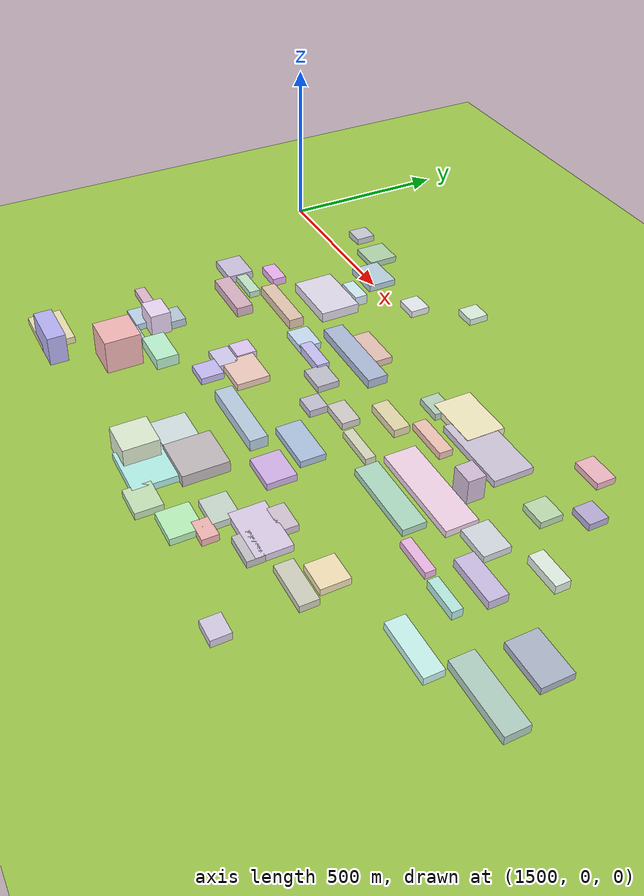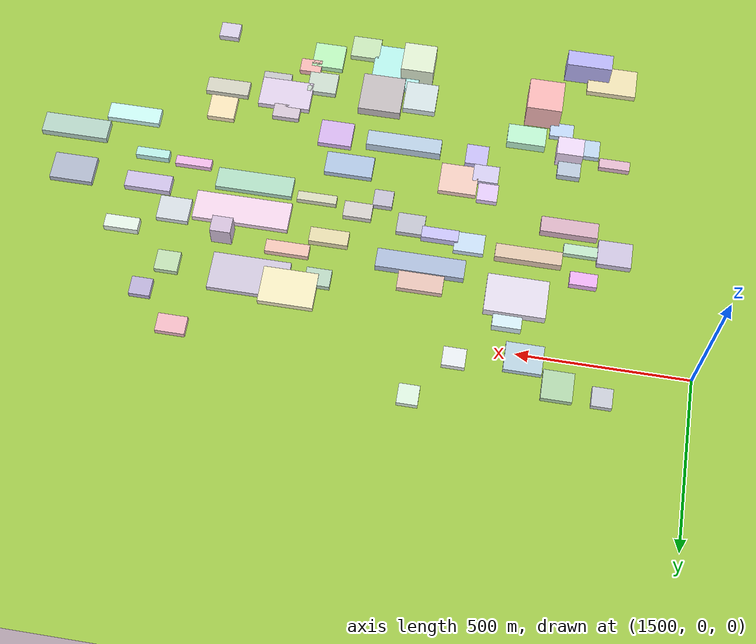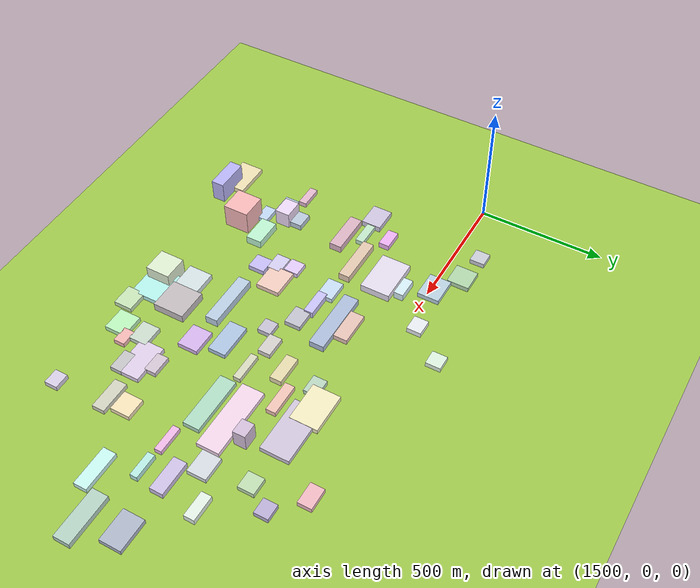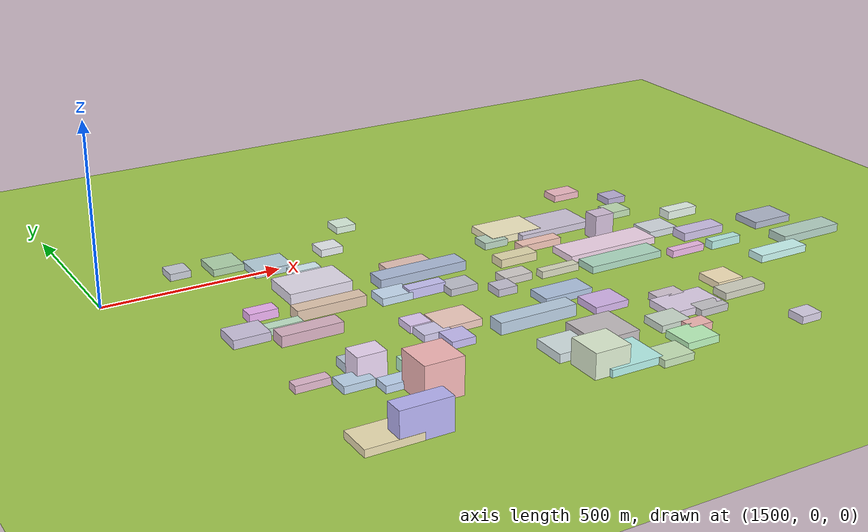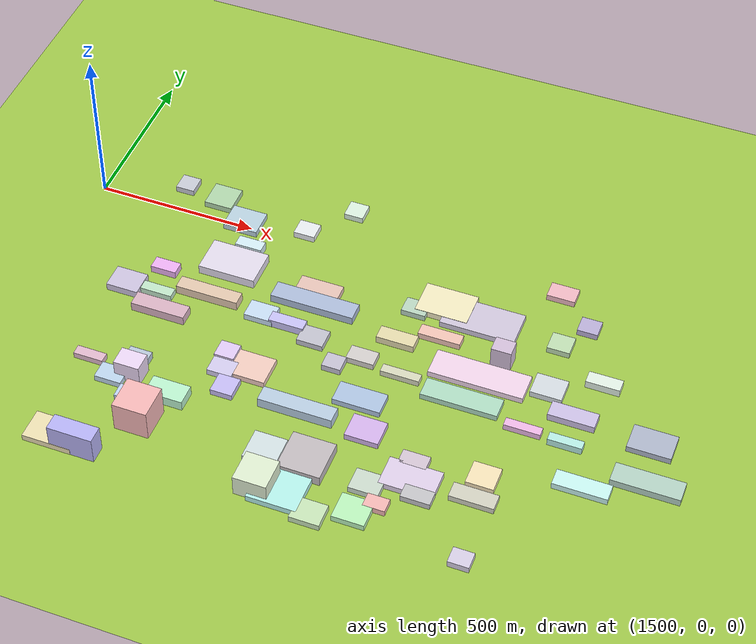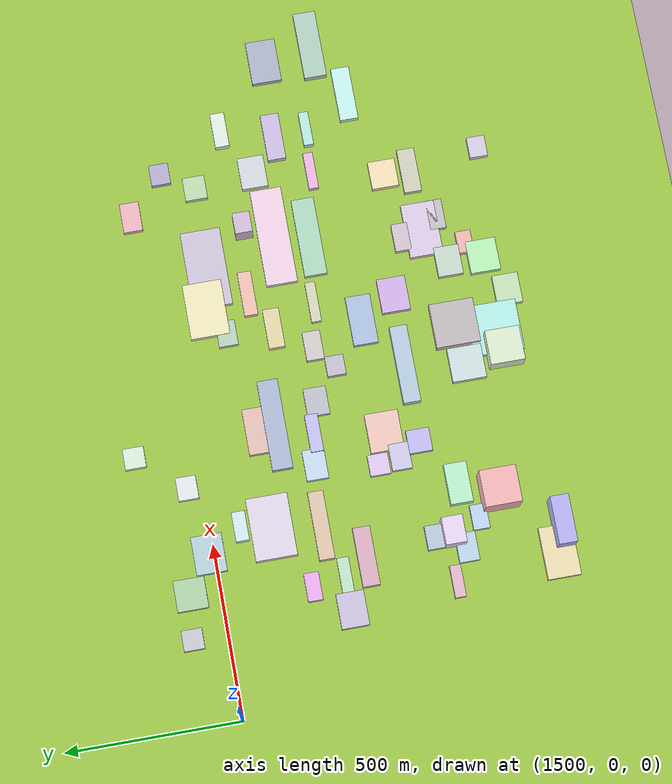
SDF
<sdf version="1.9">
 <world name="city_map">
  <model name="ground_plane">
   <static>1</static>
   <link name="link">
    <collision name="collision">
     <geometry><plane><normal>0 0 1</normal><size>11000 11000</size></plane></geometry>
    </collision>
    <visual name="visual">
     <geometry><plane><normal>0 0 1</normal><size>11000 11000</size></plane></geometry>
     <material>
      <ambient>0.551 0.712 0.210 1</ambient>
      <diffuse>0.651 0.812 0.310 1</diffuse>
      <specular>0.1 0.1 0.05 1</specular>
     </material>
    </visual>
   </link>
  </model>
  <model name="building_894255623">
   <static>1</static>
   <pose>2787.432050281861 -115.42725265398414 10.0 0 0 0</pose>
   <link name="link">
    <collision name="collision">
     <geometry><box><size>229.07070000008645 114.98631246060707 20</size></box></geometry>
    </collision>
    <visual name="visual">
     <cast_shadows>false</cast_shadows>
     <geometry><box><size>229.07070000008645 114.98631246060707 20</size></box></geometry>
     <material>
      <ambient>0.742 0.708 0.789 1</ambient>
      <diffuse>0.842 0.808 0.889 1</diffuse>
      <specular>0.253 0.243 0.267 1</specular>
      <emissive>0.01 0.01 0.01 1</emissive>
     </material>
    </visual>
   </link>
  </model>
  <model name="building_927808009">
   <static>1</static>
   <pose>2848.41137279654 -322.03809657924023 10.0 0 0 0</pose>
   <link name="link">
    <collision name="collision">
     <geometry><box><size>285.6253297418155 90.20970000049289 20</size></box></geometry>
    </collision>
    <visual name="visual">
     <cast_shadows>false</cast_shadows>
     <geometry><box><size>285.6253297418155 90.20970000049289 20</size></box></geometry>
     <material>
      <ambient>0.881 0.769 0.850 1</ambient>
      <diffuse>0.981 0.869 0.950 1</diffuse>
      <specular>0.294 0.261 0.285 1</specular>
      <emissive>0.01 0.01 0.01 1</emissive>
     </material>
    </visual>
   </link>
  </model>
  <model name="building_880007655">
   <static>1</static>
   <pose>2471.456011307013 -895.6059847772326 10.0 0 0 0</pose>
   <link name="link">
    <collision name="collision">
     <geometry><box><size>147.3858000006274 145.53099228916525 20</size></box></geometry>
    </collision>
    <visual name="visual">
     <cast_shadows>false</cast_shadows>
     <geometry><box><size>147.3858000006274 145.53099228916525 20</size></box></geometry>
     <material>
      <ambient>0.637 0.877 0.851 1</ambient>
      <diffuse>0.737 0.977 0.951 1</diffuse>
      <specular>0.221 0.293 0.285 1</specular>
      <emissive>0.01 0.01 0.01 1</emissive>
     </material>
    </visual>
   </link>
  </model>
  <model name="building_414276466">
   <static>1</static>
   <pose>2016.3013302944219 -169.8109615755788 15.0 0 0 0</pose>
   <link name="link">
    <collision name="collision">
     <geometry><box><size>178.63973250676304 118.23720000071347 30.0</size></box></geometry>
    </collision>
    <visual name="visual">
     <cast_shadows>false</cast_shadows>
     <geometry><box><size>178.63973250676304 118.23720000071347 30.0</size></box></geometry>
     <material>
      <ambient>0.817 0.791 0.857 1</ambient>
      <diffuse>0.917 0.891 0.957 1</diffuse>
      <specular>0.275 0.267 0.287 1</specular>
      <emissive>0.01 0.01 0.01 1</emissive>
     </material>
    </visual>
   </link>
  </model>
  <model name="building_656227067">
   <static>1</static>
   <pose>2668.818583720853 -94.43363346168856 10.5 0 0 0</pose>
   <link name="link">
    <collision name="collision">
     <geometry><box><size>161.17200000005028 111.9795982787374 21.0</size></box></geometry>
    </collision>
    <visual name="visual">
     <cast_shadows>false</cast_shadows>
     <geometry><box><size>161.17200000005028 111.9795982787374 21.0</size></box></geometry>
     <material>
      <ambient>0.886 0.853 0.690 1</ambient>
      <diffuse>0.986 0.953 0.790 1</diffuse>
      <specular>0.296 0.286 0.237 1</specular>
      <emissive>0.01 0.01 0.01 1</emissive>
     </material>
    </visual>
   </link>
  </model>
  <model name="building_837726093">
   <static>1</static>
   <pose>2502.488318937795 -784.9235045861699 16.5 0 0 0</pose>
   <link name="link">
    <collision name="collision">
     <geometry><box><size>128.80440000037652 126.8841141095314 33.0</size></box></geometry>
    </collision>
    <visual name="visual">
     <cast_shadows>false</cast_shadows>
     <geometry><box><size>128.80440000037652 126.8841141095314 33.0</size></box></geometry>
     <material>
      <ambient>0.688 0.662 0.673 1</ambient>
      <diffuse>0.788 0.762 0.773 1</diffuse>
      <specular>0.236 0.229 0.232 1</specular>
      <emissive>0.01 0.01 0.01 1</emissive>
     </material>
    </visual>
   </link>
  </model>
  <model name="building_397482201">
   <static>1</static>
   <pose>2302.991403528633 -229.84168238532158 13.5 0 0 0</pose>
   <link name="link">
    <collision name="collision">
     <geometry><box><size>259.5687868367075 59.018699999583646 27.0</size></box></geometry>
    </collision>
    <visual name="visual">
     <cast_shadows>false</cast_shadows>
     <geometry><box><size>259.5687868367075 59.018699999583646 27.0</size></box></geometry>
     <material>
      <ambient>0.603 0.665 0.782 1</ambient>
      <diffuse>0.703 0.765 0.882 1</diffuse>
      <specular>0.211 0.230 0.265 1</specular>
      <emissive>0.01 0.01 0.01 1</emissive>
     </material>
    </visual>
   </link>
  </model>
  <model name="building_688524839">
   <static>1</static>
   <pose>2794.5565381568986 -745.4800619930462 10.0 0 0 0</pose>
   <link name="link">
    <collision name="collision">
     <geometry><box><size>157.916260999328 96.35909999979475 20</size></box></geometry>
    </collision>
    <visual name="visual">
     <cast_shadows>false</cast_shadows>
     <geometry><box><size>157.916260999328 96.35909999979475 20</size></box></geometry>
     <material>
      <ambient>0.803 0.744 0.847 1</ambient>
      <diffuse>0.903 0.844 0.947 1</diffuse>
      <specular>0.271 0.253 0.284 1</specular>
      <emissive>0.01 0.01 0.01 1</emissive>
     </material>
    </visual>
   </link>
  </model>
  <model name="building_892668768">
   <static>1</static>
   <pose>2828.880070010337 -421.93391465047495 10.0 0 0 0</pose>
   <link name="link">
    <collision name="collision">
     <geometry><box><size>230.2362146852279 65.11259999981434 20</size></box></geometry>
    </collision>
    <visual name="visual">
     <cast_shadows>false</cast_shadows>
     <geometry><box><size>230.2362146852279 65.11259999981434 20</size></box></geometry>
     <material>
      <ambient>0.614 0.795 0.695 1</ambient>
      <diffuse>0.714 0.895 0.795 1</diffuse>
      <specular>0.214 0.268 0.239 1</specular>
      <emissive>0.01 0.01 0.01 1</emissive>
     </material>
    </visual>
   </link>
  </model>
  <model name="building_30539044">
   <static>1</static>
   <pose>1808.8200055952389 -951.1681416038413 10.0 0 0 0</pose>
   <link name="link">
    <collision name="collision">
     <geometry><box><size>147.95894312737576 94.47210000061546 20</size></box></geometry>
    </collision>
    <visual name="visual">
     <cast_shadows>false</cast_shadows>
     <geometry><box><size>147.95894312737576 94.47210000061546 20</size></box></geometry>
     <material>
      <ambient>0.859 0.808 0.630 1</ambient>
      <diffuse>0.959 0.908 0.730 1</diffuse>
      <specular>0.288 0.272 0.219 1</specular>
      <emissive>0.01 0.01 0.01 1</emissive>
     </material>
    </visual>
   </link>
  </model>
  <model name="building_439096299">
   <static>1</static>
   <pose>3401.2742384890444 -526.160856108405 12.0 0 0 0</pose>
   <link name="link">
    <collision name="collision">
     <geometry><box><size>200.39791161578626 64.80180000012581 24.0</size></box></geometry>
    </collision>
    <visual name="visual">
     <cast_shadows>false</cast_shadows>
     <geometry><box><size>200.39791161578626 64.80180000012581 24.0</size></box></geometry>
     <material>
      <ambient>0.632 0.752 0.697 1</ambient>
      <diffuse>0.732 0.852 0.797 1</diffuse>
      <specular>0.220 0.256 0.239 1</specular>
      <emissive>0.01 0.01 0.01 1</emissive>
     </material>
    </visual>
   </link>
  </model>
  <model name="building_646998600">
   <static>1</static>
   <pose>2409.5801408597104 -623.7561597694365 16.5 0 0 0</pose>
   <link name="link">
    <collision name="collision">
     <geometry><box><size>224.87489999995347 49.87216813949299 33.0</size></box></geometry>
    </collision>
    <visual name="visual">
     <cast_shadows>false</cast_shadows>
     <geometry><box><size>224.87489999995347 49.87216813949299 33.0</size></box></geometry>
     <material>
      <ambient>0.649 0.736 0.816 1</ambient>
      <diffuse>0.749 0.836 0.916 1</diffuse>
      <specular>0.225 0.251 0.275 1</specular>
      <emissive>0.01 0.01 0.01 1</emissive>
     </material>
    </visual>
   </link>
  </model>
  <model name="building_151383227">
   <static>1</static>
   <pose>3375.2659705552765 -384.0686665669621 10.0 0 0 0</pose>
   <link name="link">
    <collision name="collision">
     <geometry><box><size>128.46119171078925 85.74750000040154 20</size></box></geometry>
    </collision>
    <visual name="visual">
     <cast_shadows>false</cast_shadows>
     <geometry><box><size>128.46119171078925 85.74750000040154 20</size></box></geometry>
     <material>
      <ambient>0.611 0.644 0.722 1</ambient>
      <diffuse>0.711 0.744 0.822 1</diffuse>
      <specular>0.213 0.223 0.247 1</specular>
      <emissive>0.01 0.01 0.01 1</emissive>
     </material>
    </visual>
   </link>
  </model>
  <model name="building_635632959">
   <static>1</static>
   <pose>2007.486726383467 -815.5643215484179 50.0 0 0 0</pose>
   <link name="link">
    <collision name="collision">
     <geometry><box><size>105.03170253644049 103.90710000045544 100</size></box></geometry>
    </collision>
    <visual name="visual">
     <cast_shadows>false</cast_shadows>
     <geometry><box><size>105.03170253644049 103.90710000045544 100</size></box></geometry>
     <material>
      <ambient>0.895 0.645 0.646 1</ambient>
      <diffuse>0.995 0.745 0.746 1</diffuse>
      <specular>0.299 0.223 0.224 1</specular>
      <emissive>0.01 0.01 0.01 1</emissive>
     </material>
    </visual>
   </link>
  </model>
  <model name="building_984254845">
   <static>1</static>
   <pose>2230.5921148177986 -530.6783726472763 10.0 0 0 0</pose>
   <link name="link">
    <collision name="collision">
     <geometry><box><size>112.99639733239528 95.53769999966022 20</size></box></geometry>
    </collision>
    <visual name="visual">
     <cast_shadows>false</cast_shadows>
     <geometry><box><size>112.99639733239528 95.53769999966022 20</size></box></geometry>
     <material>
      <ambient>0.879 0.729 0.680 1</ambient>
      <diffuse>0.979 0.829 0.780 1</diffuse>
      <specular>0.294 0.249 0.234 1</specular>
      <emissive>0.01 0.01 0.01 1</emissive>
     </material>
    </visual>
   </link>
  </model>
  <model name="building_906196112">
   <static>1</static>
   <pose>2560.8555065218843 -526.8479164403066 10.0 0 0 0</pose>
   <link name="link">
    <collision name="collision">
     <geometry><box><size>143.95589999998037 71.243841876434 20</size></box></geometry>
    </collision>
    <visual name="visual">
     <cast_shadows>false</cast_shadows>
     <geometry><box><size>143.95589999998037 71.243841876434 20</size></box></geometry>
     <material>
      <ambient>0.611 0.697 0.815 1</ambient>
      <diffuse>0.711 0.797 0.915 1</diffuse>
      <specular>0.213 0.239 0.274 1</specular>
      <emissive>0.01 0.01 0.01 1</emissive>
     </material>
    </visual>
   </link>
  </model>
  <model name="building_131341324">
   <static>1</static>
   <pose>2406.1914788988433 -908.7799616587048 34.479342926650006 0 0 0</pose>
   <link name="link">
    <collision name="collision">
     <geometry><box><size>99.26729999986605 98.45381842318403 68.95868585330001</size></box></geometry>
    </collision>
    <visual name="visual">
     <cast_shadows>false</cast_shadows>
     <geometry><box><size>99.26729999986605 98.45381842318403 68.95868585330001</size></box></geometry>
     <material>
      <ambient>0.804 0.865 0.751 1</ambient>
      <diffuse>0.904 0.965 0.851 1</diffuse>
      <specular>0.271 0.290 0.255 1</specular>
      <emissive>0.01 0.01 0.01 1</emissive>
     </material>
    </visual>
   </link>
  </model>
  <model name="building_53809387">
   <static>1</static>
   <pose>2383.606750670446 -797.4970899352468 12.0 0 0 0</pose>
   <link name="link">
    <collision name="collision">
     <geometry><box><size>98.14081870510138 97.73550000010545 24.0</size></box></geometry>
    </collision>
    <visual name="visual">
     <cast_shadows>false</cast_shadows>
     <geometry><box><size>98.14081870510138 97.73550000010545 24.0</size></box></geometry>
     <material>
      <ambient>0.757 0.815 0.822 1</ambient>
      <diffuse>0.857 0.915 0.922 1</diffuse>
      <specular>0.257 0.275 0.277 1</specular>
      <emissive>0.01 0.01 0.01 1</emissive>
     </material>
    </visual>
   </link>
  </model>
  <model name="building_993826517">
   <static>1</static>
   <pose>1973.1824204400632 15.200964221027725 10.0 0 0 0</pose>
   <link name="link">
    <collision name="collision">
     <geometry><box><size>109.53913087381774 86.85749999996517 20</size></box></geometry>
    </collision>
    <visual name="visual">
     <cast_shadows>false</cast_shadows>
     <geometry><box><size>109.53913087381774 86.85749999996517 20</size></box></geometry>
     <material>
      <ambient>0.650 0.750 0.805 1</ambient>
      <diffuse>0.750 0.850 0.905 1</diffuse>
      <specular>0.225 0.255 0.272 1</specular>
      <emissive>0.01 0.01 0.01 1</emissive>
     </material>
    </visual>
   </link>
  </model>
  <model name="building_939041492">
   <static>1</static>
   <pose>1996.685498481276 -307.7467180894587 15.0 0 0 0</pose>
   <link name="link">
    <collision name="collision">
     <geometry><box><size>194.8568873930696 43.84499999972036 30.0</size></box></geometry>
    </collision>
    <visual name="visual">
     <cast_shadows>false</cast_shadows>
     <geometry><box><size>194.8568873930696 43.84499999972036 30.0</size></box></geometry>
     <material>
      <ambient>0.819 0.711 0.615 1</ambient>
      <diffuse>0.919 0.811 0.715 1</diffuse>
      <specular>0.276 0.243 0.215 1</specular>
      <emissive>0.01 0.01 0.01 1</emissive>
     </material>
    </visual>
   </link>
  </model>
  <model name="building_42994005">
   <static>1</static>
   <pose>3236.612664252029 -599.5323546683843 10.5 0 0 0</pose>
   <link name="link">
    <collision name="collision">
     <geometry><box><size>159.5181000004402 52.85125791640841 21.0</size></box></geometry>
    </collision>
    <visual name="visual">
     <cast_shadows>false</cast_shadows>
     <geometry><box><size>159.5181000004402 52.85125791640841 21.0</size></box></geometry>
     <material>
      <ambient>0.717 0.899 0.879 1</ambient>
      <diffuse>0.817 0.999 0.979 1</diffuse>
      <specular>0.245 0.300 0.294 1</specular>
      <emissive>0.01 0.01 0.01 1</emissive>
     </material>
    </visual>
   </link>
  </model>
  <model name="building_832968812">
   <static>1</static>
   <pose>1888.3129336568193 -416.09141550106494 15.0 0 0 0</pose>
   <link name="link">
    <collision name="collision">
     <geometry><box><size>168.20940000026496 49.140815588989526 30.0</size></box></geometry>
    </collision>
    <visual name="visual">
     <cast_shadows>false</cast_shadows>
     <geometry><box><size>168.20940000026496 49.140815588989526 30.0</size></box></geometry>
     <material>
      <ambient>0.783 0.626 0.694 1</ambient>
      <diffuse>0.883 0.726 0.794 1</diffuse>
      <specular>0.265 0.218 0.238 1</specular>
      <emissive>0.01 0.01 0.01 1</emissive>
     </material>
    </visual>
   </link>
  </model>
  <model name="building_723279751">
   <static>1</static>
   <pose>2686.54821979774 -903.3704969552942 10.0 0 0 0</pose>
   <link name="link">
    <collision name="collision">
     <geometry><box><size>95.52182793378982 86.41349999950876 20</size></box></geometry>
    </collision>
    <visual name="visual">
     <cast_shadows>false</cast_shadows>
     <geometry><box><size>95.52182793378982 86.41349999950876 20</size></box></geometry>
     <material>
      <ambient>0.659 0.889 0.663 1</ambient>
      <diffuse>0.759 0.989 0.763 1</diffuse>
      <specular>0.228 0.297 0.229 1</specular>
      <emissive>0.01 0.01 0.01 1</emissive>
     </material>
    </visual>
   </link>
  </model>
  <model name="building_884575717">
   <static>1</static>
   <pose>2618.3280359669675 -629.4664736998519 10.0 0 0 0</pose>
   <link name="link">
    <collision name="collision">
     <geometry><box><size>100.73249999963707 81.7833324954735 20</size></box></geometry>
    </collision>
    <visual name="visual">
     <cast_shadows>false</cast_shadows>
     <geometry><box><size>100.73249999963707 81.7833324954735 20</size></box></geometry>
     <material>
      <ambient>0.762 0.633 0.856 1</ambient>
      <diffuse>0.862 0.733 0.956 1</diffuse>
      <specular>0.259 0.220 0.287 1</specular>
      <emissive>0.01 0.01 0.01 1</emissive>
     </material>
    </visual>
   </link>
  </model>
  <model name="building_673048302">
   <static>1</static>
   <pose>1749.2571697503392 -352.250913419889 12.0 0 0 0</pose>
   <link name="link">
    <collision name="collision">
     <geometry><box><size>99.56700000021357 78.6511684689382 24.0</size></box></geometry>
    </collision>
    <visual name="visual">
     <cast_shadows>false</cast_shadows>
     <geometry><box><size>99.56700000021357 78.6511684689382 24.0</size></box></geometry>
     <material>
      <ambient>0.732 0.695 0.804 1</ambient>
      <diffuse>0.832 0.795 0.904 1</diffuse>
      <specular>0.249 0.238 0.271 1</specular>
      <emissive>0.01 0.01 0.01 1</emissive>
     </material>
    </visual>
   </link>
  </model>
  <model name="building_440732797">
   <static>1</static>
   <pose>1870.654493351942 83.81198458240956 10.0 0 0 0</pose>
   <link name="link">
    <collision name="collision">
     <geometry><box><size>88.76871135405236 88.00079999991794 20</size></box></geometry>
    </collision>
    <visual name="visual">
     <cast_shadows>false</cast_shadows>
     <geometry><box><size>88.76871135405236 88.00079999991794 20</size></box></geometry>
     <material>
      <ambient>0.620 0.766 0.602 1</ambient>
      <diffuse>0.720 0.866 0.702 1</diffuse>
      <specular>0.216 0.260 0.211 1</specular>
      <emissive>0.01 0.01 0.01 1</emissive>
     </material>
    </visual>
   </link>
  </model>
  <model name="building_69334287">
   <static>1</static>
   <pose>2295.101126461284 -173.5663848983418 10.5 0 0 0</pose>
   <link name="link">
    <collision name="collision">
     <geometry><box><size>132.99445026516628 58.07519999959965 21.0</size></box></geometry>
    </collision>
    <visual name="visual">
     <cast_shadows>false</cast_shadows>
     <geometry><box><size>132.99445026516628 58.07519999959965 21.0</size></box></geometry>
     <material>
      <ambient>0.833 0.691 0.646 1</ambient>
      <diffuse>0.933 0.791 0.746 1</diffuse>
      <specular>0.280 0.237 0.224 1</specular>
      <emissive>0.01 0.01 0.01 1</emissive>
     </material>
    </visual>
   </link>
  </model>
  <model name="building_513690102">
   <static>1</static>
   <pose>2047.048388661623 -707.9496814651661 16.5 0 0 0</pose>
   <link name="link">
    <collision name="collision">
     <geometry><box><size>115.79520000056931 64.21461380769317 33.0</size></box></geometry>
    </collision>
    <visual name="visual">
     <cast_shadows>false</cast_shadows>
     <geometry><box><size>115.79520000056931 64.21461380769317 33.0</size></box></geometry>
     <material>
      <ambient>0.660 0.884 0.739 1</ambient>
      <diffuse>0.760 0.984 0.839 1</diffuse>
      <specular>0.228 0.295 0.252 1</specular>
      <emissive>0.01 0.01 0.01 1</emissive>
     </material>
    </visual>
   </link>
  </model>
  <model name="building_414684896">
   <static>1</static>
   <pose>3142.309561037678 -372.0590798982896 12.0 0 0 0</pose>
   <link name="link">
    <collision name="collision">
     <geometry><box><size>138.07928763145668 52.52520000020411 24.0</size></box></geometry>
    </collision>
    <visual name="visual">
     <cast_shadows>false</cast_shadows>
     <geometry><box><size>138.07928763145668 52.52520000020411 24.0</size></box></geometry>
     <material>
      <ambient>0.732 0.682 0.833 1</ambient>
      <diffuse>0.832 0.782 0.933 1</diffuse>
      <specular>0.250 0.235 0.280 1</specular>
      <emissive>0.01 0.01 0.01 1</emissive>
     </material>
    </visual>
   </link>
  </model>
  <model name="building_416089418">
   <static>1</static>
   <pose>3048.0580881543583 -295.23599068080097 10.0 0 0 0</pose>
   <link name="link">
    <collision name="collision">
     <geometry><box><size>94.5054000002159 75.73260859393346 20</size></box></geometry>
    </collision>
    <visual name="visual">
     <cast_shadows>false</cast_shadows>
     <geometry><box><size>94.5054000002159 75.73260859393346 20</size></box></geometry>
     <material>
      <ambient>0.761 0.790 0.814 1</ambient>
      <diffuse>0.861 0.890 0.914 1</diffuse>
      <specular>0.258 0.267 0.274 1</specular>
      <emissive>0.01 0.01 0.01 1</emissive>
     </material>
    </visual>
   </link>
  </model>
  <model name="building_91938641">
   <static>1</static>
   <pose>1887.2760519199817 -971.5566369700301 43.9260301960125 0 0 0</pose>
   <link name="link">
    <collision name="collision">
     <geometry><box><size>136.46832546298083 52.369799999965494 87.852060392025</size></box></geometry>
    </collision>
    <visual name="visual">
     <cast_shadows>false</cast_shadows>
     <geometry><box><size>136.46832546298083 52.369799999965494 87.852060392025</size></box></geometry>
     <material>
      <ambient>0.644 0.628 0.893 1</ambient>
      <diffuse>0.744 0.728 0.993 1</diffuse>
      <specular>0.223 0.218 0.298 1</specular>
      <emissive>0.01 0.01 0.01 1</emissive>
     </material>
    </visual>
   </link>
  </model>
  <model name="building_54477270">
   <static>1</static>
   <pose>2577.2159250889013 -953.2097719174004 10.0 0 0 0</pose>
   <link name="link">
    <collision name="collision">
     <geometry><box><size>88.67789999994358 74.0741242335138 20</size></box></geometry>
    </collision>
    <visual name="visual">
     <cast_shadows>false</cast_shadows>
     <geometry><box><size>88.67789999994358 74.0741242335138 20</size></box></geometry>
     <material>
      <ambient>0.710 0.828 0.650 1</ambient>
      <diffuse>0.810 0.928 0.750 1</diffuse>
      <specular>0.243 0.278 0.225 1</specular>
      <emissive>0.01 0.01 0.01 1</emissive>
     </material>
    </visual>
   </link>
  </model>
  <model name="building_533887747">
   <static>1</static>
   <pose>2974.35793090167 -741.959267529461 10.0 0 0 0</pose>
   <link name="link">
    <collision name="collision">
     <geometry><box><size>130.53746416412037 50.18309999964998 20</size></box></geometry>
    </collision>
    <visual name="visual">
     <cast_shadows>false</cast_shadows>
     <geometry><box><size>130.53746416412037 50.18309999964998 20</size></box></geometry>
     <material>
      <ambient>0.752 0.751 0.683 1</ambient>
      <diffuse>0.852 0.851 0.783 1</diffuse>
      <specular>0.256 0.255 0.235 1</specular>
      <emissive>0.01 0.01 0.01 1</emissive>
     </material>
    </visual>
   </link>
  </model>
  <model name="building_313512786">
   <static>1</static>
   <pose>2976.986708200964 -666.323702647075 10.0 0 0 0</pose>
   <link name="link">
    <collision name="collision">
     <geometry><box><size>82.04009999966644 78.2308221129515 20</size></box></geometry>
    </collision>
    <visual name="visual">
     <cast_shadows>false</cast_shadows>
     <geometry><box><size>82.04009999966644 78.2308221129515 20</size></box></geometry>
     <material>
      <ambient>0.897 0.821 0.656 1</ambient>
      <diffuse>0.997 0.921 0.756 1</diffuse>
      <specular>0.299 0.276 0.227 1</specular>
      <emissive>0.01 0.01 0.01 1</emissive>
     </material>
    </visual>
   </link>
  </model>
  <model name="building_125971328">
   <static>1</static>
   <pose>2689.028822696219 -803.0128148169248 10.0 0 0 0</pose>
   <link name="link">
    <collision name="collision">
     <geometry><box><size>88.0079446361933 72.08340000003943 20</size></box></geometry>
    </collision>
    <visual name="visual">
     <cast_shadows>false</cast_shadows>
     <geometry><box><size>88.0079446361933 72.08340000003943 20</size></box></geometry>
     <material>
      <ambient>0.724 0.786 0.731 1</ambient>
      <diffuse>0.824 0.886 0.831 1</diffuse>
      <specular>0.247 0.266 0.249 1</specular>
      <emissive>0.01 0.01 0.01 1</emissive>
     </material>
    </visual>
   </link>
  </model>
  <model name="building_10133406">
   <static>1</static>
   <pose>2171.7080898782656 -322.325312479494 10.5 0 0 0</pose>
   <link name="link">
    <collision name="collision">
     <geometry><box><size>88.23575273644249 62.77050000004891 21.0</size></box></geometry>
    </collision>
    <visual name="visual">
     <cast_shadows>false</cast_shadows>
     <geometry><box><size>88.23575273644249 62.77050000004891 21.0</size></box></geometry>
     <material>
      <ambient>0.713 0.801 0.887 1</ambient>
      <diffuse>0.813 0.901 0.987 1</diffuse>
      <specular>0.244 0.270 0.296 1</specular>
      <emissive>0.01 0.01 0.01 1</emissive>
     </material>
    </visual>
   </link>
  </model>
  <model name="building_851927392">
   <static>1</static>
   <pose>2579.819061646928 -275.24385978464926 12.0 0 0 0</pose>
   <link name="link">
    <collision name="collision">
     <geometry><box><size>115.25296196682038 46.464600000362566 24.0</size></box></geometry>
    </collision>
    <visual name="visual">
     <cast_shadows>false</cast_shadows>
     <geometry><box><size>115.25296196682038 46.464600000362566 24.0</size></box></geometry>
     <material>
      <ambient>0.827 0.786 0.605 1</ambient>
      <diffuse>0.927 0.886 0.705 1</diffuse>
      <specular>0.278 0.266 0.212 1</specular>
      <emissive>0.01 0.01 0.01 1</emissive>
     </material>
    </visual>
   </link>
  </model>
  <model name="building_151700081">
   <static>1</static>
   <pose>2349.42301666472 -357.50589740375887 10.0 0 0 0</pose>
   <link name="link">
    <collision name="collision">
     <geometry><box><size>81.41405944463932 64.46880000017785 20</size></box></geometry>
    </collision>
    <visual name="visual">
     <cast_shadows>false</cast_shadows>
     <geometry><box><size>81.41405944463932 64.46880000017785 20</size></box></geometry>
     <material>
      <ambient>0.687 0.688 0.737 1</ambient>
      <diffuse>0.787 0.788 0.837 1</diffuse>
      <specular>0.236 0.236 0.251 1</specular>
      <emissive>0.01 0.01 0.01 1</emissive>
     </material>
    </visual>
   </link>
  </model>
  <model name="building_498724744">
   <static>1</static>
   <pose>2694.073449841487 -219.3732425363392 10.5 0 0 0</pose>
   <link name="link">
    <collision name="collision">
     <geometry><box><size>129.2671977662095 38.80559999998212 21.0</size></box></geometry>
    </collision>
    <visual name="visual">
     <cast_shadows>false</cast_shadows>
     <geometry><box><size>129.2671977662095 38.80559999998212 21.0</size></box></geometry>
     <material>
      <ambient>0.880 0.697 0.644 1</ambient>
      <diffuse>0.980 0.797 0.744 1</diffuse>
      <specular>0.294 0.239 0.223 1</specular>
      <emissive>0.01 0.01 0.01 1</emissive>
     </material>
    </visual>
   </link>
  </model>
  <model name="building_71025199">
   <static>1</static>
   <pose>2976.219250653232 72.27920420445619 10.0 0 0 0</pose>
   <link name="link">
    <collision name="collision">
     <geometry><box><size>86.29139999965929 55.08625200819413 20</size></box></geometry>
    </collision>
    <visual name="visual">
     <cast_shadows>false</cast_shadows>
     <geometry><box><size>86.29139999965929 55.08625200819413 20</size></box></geometry>
     <material>
      <ambient>0.872 0.652 0.693 1</ambient>
      <diffuse>0.972 0.752 0.793 1</diffuse>
      <specular>0.292 0.226 0.238 1</specular>
      <emissive>0.01 0.01 0.01 1</emissive>
     </material>
    </visual>
   </link>
  </model>
  <model name="building_735199677">
   <static>1</static>
   <pose>1865.9376302579378 -699.1427344010765 10.0 0 0 0</pose>
   <link name="link">
    <collision name="collision">
     <geometry><box><size>81.9402000000764 57.58764294948197 20</size></box></geometry>
    </collision>
    <visual name="visual">
     <cast_shadows>false</cast_shadows>
     <geometry><box><size>81.9402000000764 57.58764294948197 20</size></box></geometry>
     <material>
      <ambient>0.671 0.769 0.860 1</ambient>
      <diffuse>0.771 0.869 0.960 1</diffuse>
      <specular>0.231 0.261 0.288 1</specular>
      <emissive>0.01 0.01 0.01 1</emissive>
     </material>
    </visual>
   </link>
  </model>
  <model name="building_966738110">
   <static>1</static>
   <pose>1914.3017234943438 -668.3397540951535 33.75088748383661 0 0 0</pose>
   <link name="link">
    <collision name="collision">
     <geometry><box><size>78.5348794814547 59.62920000040839 67.50177496767321</size></box></geometry>
    </collision>
    <visual name="visual">
     <cast_shadows>false</cast_shadows>
     <geometry><box><size>78.5348794814547 59.62920000040839 67.50177496767321</size></box></geometry>
     <material>
      <ambient>0.855 0.775 0.893 1</ambient>
      <diffuse>0.955 0.875 0.993 1</diffuse>
      <specular>0.287 0.262 0.298 1</specular>
      <emissive>0.01 0.01 0.01 1</emissive>
     </material>
    </visual>
   </link>
  </model>
  <model name="building_176066013">
   <static>1</static>
   <pose>2187.2707740052206 -622.8681111566826 10.0 0 0 0</pose>
   <link name="link">
    <collision name="collision">
     <geometry><box><size>66.85529999967343 66.30754471733974 20</size></box></geometry>
    </collision>
    <visual name="visual">
     <cast_shadows>false</cast_shadows>
     <geometry><box><size>66.85529999967343 66.30754471733974 20</size></box></geometry>
     <material>
      <ambient>0.703 0.665 0.887 1</ambient>
      <diffuse>0.803 0.765 0.987 1</diffuse>
      <specular>0.241 0.229 0.296 1</specular>
      <emissive>0.01 0.01 0.01 1</emissive>
     </material>
    </visual>
   </link>
  </model>
  <model name="building_199039869">
   <static>1</static>
   <pose>3030.2099798457475 -122.96824547895656 10.0 0 0 0</pose>
   <link name="link">
    <collision name="collision">
     <geometry><box><size>68.74229999964143 63.97042089621697 20</size></box></geometry>
    </collision>
    <visual name="visual">
     <cast_shadows>false</cast_shadows>
     <geometry><box><size>68.74229999964143 63.97042089621697 20</size></box></geometry>
     <material>
      <ambient>0.680 0.801 0.629 1</ambient>
      <diffuse>0.780 0.901 0.729 1</diffuse>
      <specular>0.234 0.270 0.219 1</specular>
      <emissive>0.01 0.01 0.01 1</emissive>
     </material>
    </visual>
   </link>
  </model>
  <model name="building_871481686">
   <static>1</static>
   <pose>2152.23574431892 -561.878289578512 10.0 0 0 0</pose>
   <link name="link">
    <collision name="collision">
     <geometry><box><size>76.4188792904501 57.13170000040435 20</size></box></geometry>
    </collision>
    <visual name="visual">
     <cast_shadows>false</cast_shadows>
     <geometry><box><size>76.4188792904501 57.13170000040435 20</size></box></geometry>
     <material>
      <ambient>0.757 0.732 0.867 1</ambient>
      <diffuse>0.857 0.832 0.967 1</diffuse>
      <specular>0.257 0.250 0.290 1</specular>
      <emissive>0.01 0.01 0.01 1</emissive>
     </material>
    </visual>
   </link>
  </model>
  <model name="building_844596124">
   <static>1</static>
   <pose>2510.8752073789587 -377.15636167733516 10.5 0 0 0</pose>
   <link name="link">
    <collision name="collision">
     <geometry><box><size>84.3730008924459 50.79359999968602 21.0</size></box></geometry>
    </collision>
    <visual name="visual">
     <cast_shadows>false</cast_shadows>
     <geometry><box><size>84.3730008924459 50.79359999968602 21.0</size></box></geometry>
     <material>
      <ambient>0.759 0.738 0.728 1</ambient>
      <diffuse>0.859 0.838 0.828 1</diffuse>
      <specular>0.258 0.251 0.248 1</specular>
      <emissive>0.01 0.01 0.01 1</emissive>
     </material>
    </visual>
   </link>
  </model>
  <model name="building_823442741">
   <static>1</static>
   <pose>3189.2410726056232 -222.82401893443858 12.527009207672052 0 0 0</pose>
   <link name="link">
    <collision name="collision">
     <geometry><box><size>101.94540549029453 41.24760000012628 25.054018415344103</size></box></geometry>
    </collision>
    <visual name="visual">
     <cast_shadows>false</cast_shadows>
     <geometry><box><size>101.94540549029453 41.24760000012628 25.054018415344103</size></box></geometry>
     <material>
      <ambient>0.820 0.876 0.829 1</ambient>
      <diffuse>0.920 0.976 0.929 1</diffuse>
      <specular>0.276 0.293 0.279 1</specular>
      <emissive>0.01 0.01 0.01 1</emissive>
     </material>
    </visual>
   </link>
  </model>
  <model name="building_868677504">
   <static>1</static>
   <pose>2589.141484125365 -141.03542721706577 10.0 0 0 0</pose>
   <link name="link">
    <collision name="collision">
     <geometry><box><size>73.948199999748 55.29134487904196 20</size></box></geometry>
    </collision>
    <visual name="visual">
     <cast_shadows>false</cast_shadows>
     <geometry><box><size>73.948199999748 55.29134487904196 20</size></box></geometry>
     <material>
      <ambient>0.654 0.766 0.685 1</ambient>
      <diffuse>0.754 0.866 0.785 1</diffuse>
      <specular>0.226 0.260 0.235 1</specular>
      <emissive>0.01 0.01 0.01 1</emissive>
     </material>
    </visual>
   </link>
  </model>
  <model name="building_533459936">
   <static>1</static>
   <pose>1909.4412475794313 -620.0421173666041 12.196248986179747 0 0 0</pose>
   <link name="link">
    <collision name="collision">
     <geometry><box><size>68.40829936689714 59.39610000005047 24.392497972359493</size></box></geometry>
    </collision>
    <visual name="visual">
     <cast_shadows>false</cast_shadows>
     <geometry><box><size>68.40829936689714 59.39610000005047 24.392497972359493</size></box></geometry>
     <material>
      <ambient>0.656 0.718 0.784 1</ambient>
      <diffuse>0.756 0.818 0.884 1</diffuse>
      <specular>0.227 0.245 0.265 1</specular>
      <emissive>0.01 0.01 0.01 1</emissive>
     </material>
    </visual>
   </link>
  </model>
  <model name="building_485656961">
   <static>1</static>
   <pose>2259.946781473578 -334.6404776499588 13.5 0 0 0</pose>
   <link name="link">
    <collision name="collision">
     <geometry><box><size>108.675432225866 36.796500000164656 27.0</size></box></geometry>
    </collision>
    <visual name="visual">
     <cast_shadows>false</cast_shadows>
     <geometry><box><size>108.675432225866 36.796500000164656 27.0</size></box></geometry>
     <material>
      <ambient>0.711 0.689 0.897 1</ambient>
      <diffuse>0.811 0.789 0.997 1</diffuse>
      <specular>0.243 0.237 0.299 1</specular>
      <emissive>0.01 0.01 0.01 1</emissive>
     </material>
    </visual>
   </link>
  </model>
  <model name="building_543822647">
   <static>1</static>
   <pose>2830.787169164322 -793.1287017726163 10.0 0 0 0</pose>
   <link name="link">
    <collision name="collision">
     <geometry><box><size>86.64314466461562 45.78749999954823 20</size></box></geometry>
    </collision>
    <visual name="visual">
     <cast_shadows>false</cast_shadows>
     <geometry><box><size>86.64314466461562 45.78749999954823 20</size></box></geometry>
     <material>
      <ambient>0.698 0.697 0.713 1</ambient>
      <diffuse>0.798 0.797 0.813 1</diffuse>
      <specular>0.240 0.239 0.244 1</specular>
      <emissive>0.01 0.01 0.01 1</emissive>
     </material>
    </visual>
   </link>
  </model>
  <model name="building_324576270">
   <static>1</static>
   <pose>2167.65602893204 44.40473537658317 10.5 0 0 0</pose>
   <link name="link">
    <collision name="collision">
     <geometry><box><size>66.37267190342969 57.57570000007206 21.0</size></box></geometry>
    </collision>
    <visual name="visual">
     <cast_shadows>false</cast_shadows>
     <geometry><box><size>66.37267190342969 57.57570000007206 21.0</size></box></geometry>
     <material>
      <ambient>0.838 0.854 0.871 1</ambient>
      <diffuse>0.938 0.954 0.971 1</diffuse>
      <specular>0.281 0.286 0.291 1</specular>
      <emissive>0.01 0.01 0.01 1</emissive>
     </material>
    </visual>
   </link>
  </model>
  <model name="building_145174969">
   <static>1</static>
   <pose>2781.5795587942703 -682.5464282865768 10.0 0 0 0</pose>
   <link name="link">
    <collision name="collision">
     <geometry><box><size>81.0141856145202 46.03170000003587 20</size></box></geometry>
    </collision>
    <visual name="visual">
     <cast_shadows>false</cast_shadows>
     <geometry><box><size>81.0141856145202 46.03170000003587 20</size></box></geometry>
     <material>
      <ambient>0.763 0.704 0.764 1</ambient>
      <diffuse>0.863 0.804 0.864 1</diffuse>
      <specular>0.259 0.241 0.259 1</specular>
      <emissive>0.01 0.01 0.01 1</emissive>
     </material>
    </visual>
   </link>
  </model>
  <model name="building_657278417">
   <static>1</static>
   <pose>2278.763077127755 176.5267115445188 10.0 0 0 0</pose>
   <link name="link">
    <collision name="collision">
     <geometry><box><size>60.238232354856066 59.74020000012814 20</size></box></geometry>
    </collision>
    <visual name="visual">
     <cast_shadows>false</cast_shadows>
     <geometry><box><size>60.238232354856066 59.74020000012814 20</size></box></geometry>
     <material>
      <ambient>0.790 0.876 0.804 1</ambient>
      <diffuse>0.890 0.976 0.904 1</diffuse>
      <specular>0.267 0.293 0.271 1</specular>
      <emissive>0.01 0.01 0.01 1</emissive>
     </material>
    </visual>
   </link>
  </model>
  <model name="building_906684494">
   <static>1</static>
   <pose>2139.929931578129 -498.8624479000926 10.0 0 0 0</pose>
   <link name="link">
    <collision name="collision">
     <geometry><box><size>60.75030000010173 58.03782760237344 20</size></box></geometry>
    </collision>
    <visual name="visual">
     <cast_shadows>false</cast_shadows>
     <geometry><box><size>60.75030000010173 58.03782760237344 20</size></box></geometry>
     <material>
      <ambient>0.816 0.724 0.899 1</ambient>
      <diffuse>0.916 0.824 0.999 1</diffuse>
      <specular>0.275 0.247 0.300 1</specular>
      <emissive>0.01 0.01 0.01 1</emissive>
     </material>
    </visual>
   </link>
  </model>
  <model name="building_526658199">
   <static>1</static>
   <pose>3088.607363255763 -29.603359911736405 10.0 0 0 0</pose>
   <link name="link">
    <collision name="collision">
     <geometry><box><size>62.09149167245198 55.67759999997435 20</size></box></geometry>
    </collision>
    <visual name="visual">
     <cast_shadows>false</cast_shadows>
     <geometry><box><size>62.09149167245198 55.67759999997435 20</size></box></geometry>
     <material>
      <ambient>0.658 0.614 0.771 1</ambient>
      <diffuse>0.758 0.714 0.871 1</diffuse>
      <specular>0.228 0.214 0.261 1</specular>
      <emissive>0.01 0.01 0.01 1</emissive>
     </material>
    </visual>
   </link>
  </model>
  <model name="building_623962231">
   <static>1</static>
   <pose>1744.9552258943004 98.74443070802376 10.0 0 0 0</pose>
   <link name="link">
    <collision name="collision">
     <geometry><box><size>58.89660000052288 58.6250512697855 20</size></box></geometry>
    </collision>
    <visual name="visual">
     <cast_shadows>false</cast_shadows>
     <geometry><box><size>58.89660000052288 58.6250512697855 20</size></box></geometry>
     <material>
      <ambient>0.712 0.727 0.767 1</ambient>
      <diffuse>0.812 0.827 0.867 1</diffuse>
      <specular>0.244 0.248 0.260 1</specular>
      <emissive>0.01 0.01 0.01 1</emissive>
     </material>
    </visual>
   </link>
  </model>
  <model name="building_158836892">
   <static>1</static>
   <pose>1846.2539106836773 -349.9744286645369 10.0 0 0 0</pose>
   <link name="link">
    <collision name="collision">
     <geometry><box><size>103.2965999996307 33.34103726218004 20</size></box></geometry>
    </collision>
    <visual name="visual">
     <cast_shadows>false</cast_shadows>
     <geometry><box><size>103.2965999996307 33.34103726218004 20</size></box></geometry>
     <material>
      <ambient>0.684 0.831 0.718 1</ambient>
      <diffuse>0.784 0.931 0.818 1</diffuse>
      <specular>0.235 0.279 0.245 1</specular>
      <emissive>0.01 0.01 0.01 1</emissive>
     </material>
    </visual>
   </link>
  </model>
  <model name="building_536885457">
   <static>1</static>
   <pose>2637.0460942284017 -399.6084205266736 10.0 0 0 0</pose>
   <link name="link">
    <collision name="collision">
     <geometry><box><size>117.70788854014941 28.62690000012691 20</size></box></geometry>
    </collision>
    <visual name="visual">
     <cast_shadows>false</cast_shadows>
     <geometry><box><size>117.70788854014941 28.62690000012691 20</size></box></geometry>
     <material>
      <ambient>0.775 0.780 0.672 1</ambient>
      <diffuse>0.875 0.880 0.772 1</diffuse>
      <specular>0.263 0.264 0.232 1</specular>
      <emissive>0.01 0.01 0.01 1</emissive>
     </material>
    </visual>
   </link>
  </model>
  <model name="building_624692297">
   <static>1</static>
   <pose>1831.4082811543738 -255.74721933371578 12.0 0 0 0</pose>
   <link name="link">
    <collision name="collision">
     <geometry><box><size>79.76435098653023 42.113399999990975 24.0</size></box></geometry>
    </collision>
    <visual name="visual">
     <cast_shadows>false</cast_shadows>
     <geometry><box><size>79.76435098653023 42.113399999990975 24.0</size></box></geometry>
     <material>
      <ambient>0.860 0.620 0.884 1</ambient>
      <diffuse>0.960 0.720 0.984 1</diffuse>
      <specular>0.288 0.216 0.295 1</specular>
      <emissive>0.01 0.01 0.01 1</emissive>
     </material>
    </visual>
   </link>
  </model>
  <model name="building_517500598">
   <static>1</static>
   <pose>1944.1890799420673 -749.7588664493192 10.0 0 0 0</pose>
   <link name="link">
    <collision name="collision">
     <geometry><box><size>70.77360000050703 46.50969372273203 20</size></box></geometry>
    </collision>
    <visual name="visual">
     <cast_shadows>false</cast_shadows>
     <geometry><box><size>70.77360000050703 46.50969372273203 20</size></box></geometry>
     <material>
      <ambient>0.682 0.771 0.892 1</ambient>
      <diffuse>0.782 0.871 0.992 1</diffuse>
      <specular>0.235 0.261 0.298 1</specular>
      <emissive>0.01 0.01 0.01 1</emissive>
     </material>
    </visual>
   </link>
  </model>
  <model name="building_766912432">
   <static>1</static>
   <pose>2033.8096143837593 -84.38530033221454 15.0 0 0 0</pose>
   <link name="link">
    <collision name="collision">
     <geometry><box><size>84.02338438958611 38.01750000023674 30.0</size></box></geometry>
    </collision>
    <visual name="visual">
     <cast_shadows>false</cast_shadows>
     <geometry><box><size>84.02338438958611 38.01750000023674 30.0</size></box></geometry>
     <material>
      <ambient>0.762 0.859 0.893 1</ambient>
      <diffuse>0.862 0.959 0.993 1</diffuse>
      <specular>0.259 0.288 0.298 1</specular>
      <emissive>0.01 0.01 0.01 1</emissive>
     </material>
    </visual>
   </link>
  </model>
  <model name="building_926959762">
   <static>1</static>
   <pose>3009.807410626691 -948.8760820255669 10.5 0 0 0</pose>
   <link name="link">
    <collision name="collision">
     <geometry><box><size>61.4750132679233 51.72600000032901 21.0</size></box></geometry>
    </collision>
    <visual name="visual">
     <cast_shadows>false</cast_shadows>
     <geometry><box><size>61.4750132679233 51.72600000032901 21.0</size></box></geometry>
     <material>
      <ambient>0.773 0.740 0.834 1</ambient>
      <diffuse>0.873 0.840 0.934 1</diffuse>
      <specular>0.262 0.252 0.280 1</specular>
      <emissive>0.01 0.01 0.01 1</emissive>
     </material>
    </visual>
   </link>
  </model>
  <model name="building_762145205">
   <static>1</static>
   <pose>2442.557683930012 -428.7906174264652 10.5 0 0 0</pose>
   <link name="link">
    <collision name="collision">
     <geometry><box><size>57.88843081226821 53.29109999969006 21.0</size></box></geometry>
    </collision>
    <visual name="visual">
     <cast_shadows>false</cast_shadows>
     <geometry><box><size>57.88843081226821 53.29109999969006 21.0</size></box></geometry>
     <material>
      <ambient>0.701 0.684 0.759 1</ambient>
      <diffuse>0.801 0.784 0.859 1</diffuse>
      <specular>0.240 0.235 0.258 1</specular>
      <emissive>0.01 0.01 0.01 1</emissive>
     </material>
    </visual>
   </link>
  </model>
  <model name="building_178367401">
   <static>1</static>
   <pose>3023.713302759861 -461.83055184522175 10.0 0 0 0</pose>
   <link name="link">
    <collision name="collision">
     <geometry><box><size>108.44856835748799 28.094100000210176 20</size></box></geometry>
    </collision>
    <visual name="visual">
     <cast_shadows>false</cast_shadows>
     <geometry><box><size>108.44856835748799 28.094100000210176 20</size></box></geometry>
     <material>
      <ambient>0.868 0.653 0.837 1</ambient>
      <diffuse>0.968 0.753 0.937 1</diffuse>
      <specular>0.290 0.226 0.281 1</specular>
      <emissive>0.01 0.01 0.01 1</emissive>
     </material>
    </visual>
   </link>
  </model>
  <model name="building_353209570">
   <static>1</static>
   <pose>2890.2657095119275 -239.18555434219593 35.918863149905704 0 0 0</pose>
   <link name="link">
    <collision name="collision">
     <geometry><box><size>60.783599999702176 49.807735429697736 71.83772629981141</size></box></geometry>
    </collision>
    <visual name="visual">
     <cast_shadows>false</cast_shadows>
     <geometry><box><size>60.783599999702176 49.807735429697736 71.83772629981141</size></box></geometry>
     <material>
      <ambient>0.755 0.674 0.780 1</ambient>
      <diffuse>0.855 0.774 0.880 1</diffuse>
      <specular>0.256 0.232 0.264 1</specular>
      <emissive>0.01 0.01 0.01 1</emissive>
     </material>
    </visual>
   </link>
  </model>
  <model name="building_484044439">
   <static>1</static>
   <pose>1776.3016050703911 -655.1630738266784 10.0 0 0 0</pose>
   <link name="link">
    <collision name="collision">
     <geometry><box><size>91.3085999999268 31.282818702515154 20</size></box></geometry>
    </collision>
    <visual name="visual">
     <cast_shadows>false</cast_shadows>
     <geometry><box><size>91.3085999999268 31.282818702515154 20</size></box></geometry>
     <material>
      <ambient>0.816 0.651 0.735 1</ambient>
      <diffuse>0.916 0.751 0.835 1</diffuse>
      <specular>0.275 0.225 0.251 1</specular>
      <emissive>0.01 0.01 0.01 1</emissive>
     </material>
    </visual>
   </link>
  </model>
  <model name="building_672632585">
   <static>1</static>
   <pose>2736.262342939018 -859.044908935088 10.0 0 0 0</pose>
   <link name="link">
    <collision name="collision">
     <geometry><box><size>64.45770000004813 44.261191667594126 20</size></box></geometry>
    </collision>
    <visual name="visual">
     <cast_shadows>false</cast_shadows>
     <geometry><box><size>64.45770000004813 44.261191667594126 20</size></box></geometry>
     <material>
      <ambient>0.889 0.647 0.635 1</ambient>
      <diffuse>0.989 0.747 0.735 1</diffuse>
      <specular>0.297 0.224 0.221 1</specular>
      <emissive>0.01 0.01 0.01 1</emissive>
     </material>
    </visual>
   </link>
  </model>
  <model name="building_126841543">
   <static>1</static>
   <pose>3150.4357116242904 -470.2292600897965 12.0 0 0 0</pose>
   <link name="link">
    <collision name="collision">
     <geometry><box><size>100.58623261241837 28.27169999991952 24.0</size></box></geometry>
    </collision>
    <visual name="visual">
     <cast_shadows>false</cast_shadows>
     <geometry><box><size>100.58623261241837 28.27169999991952 24.0</size></box></geometry>
     <material>
      <ambient>0.648 0.860 0.827 1</ambient>
      <diffuse>0.748 0.960 0.927 1</diffuse>
      <specular>0.224 0.288 0.278 1</specular>
      <emissive>0.01 0.01 0.01 1</emissive>
     </material>
    </visual>
   </link>
  </model>
 </world>
</sdf>
